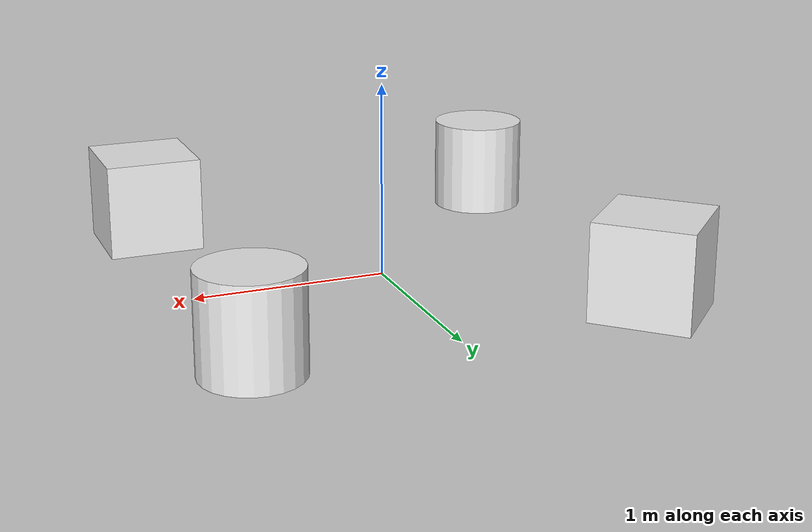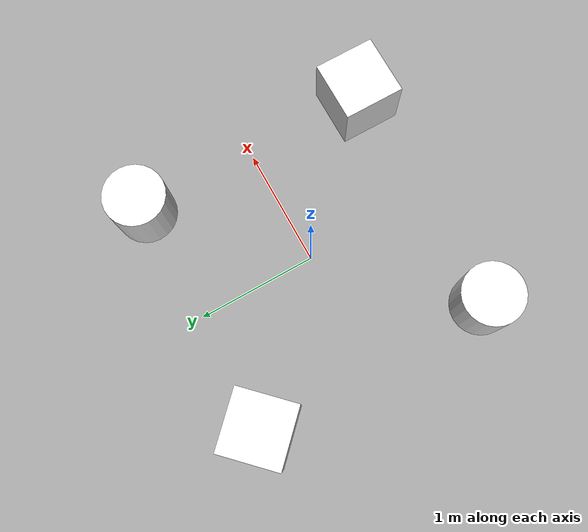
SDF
<sdf version="1.6">
 <world name="assessment_world_obstacles">
  <model name="ground_plane">
   <static>true</static>
   <link name="link">
    <collision name="collision">
     <geometry><plane><normal>0 0 1</normal><size>100 100</size></plane></geometry>
     <surface>
      <contact><collide_bitmask>0xffff</collide_bitmask></contact>
      <friction><ode><mu>100</mu><mu2>50</mu2></ode></friction>
     </surface>
    </collision>
   </link>
  </model>
  <light type="directional" name="sun">
   <cast_shadows>false</cast_shadows>
   <pose>0 0 13 0 0 0</pose>
   <diffuse>0.8 0.8 0.8 1</diffuse>
   <specular>0.2 0.2 0.2 1</specular>
   <attenuation>
    <range>1000</range>
    <constant>0.9</constant>
    <linear>0.01</linear>
    <quadratic>0.001</quadratic>
   </attenuation>
   <direction>-0.5 0.1 -0.9</direction>
  </light>
  <scene><shadows>false</shadows><grid>false</grid><origin_visual>false</origin_visual></scene>
  <physics type="ode">
   <real_time_update_rate>1000.0</real_time_update_rate>
   <max_step_size>0.001</max_step_size>
   <real_time_factor>1</real_time_factor>
   <ode>
    <solver>
     <type>quick</type>
     <iters>150</iters>
     <precon_iters>0</precon_iters>
     <sor>1.400000</sor>
     <use_dynamic_moi_rescaling>1</use_dynamic_moi_rescaling>
    </solver>
    <constraints>
     <cfm>0.00001</cfm>
     <erp>0.2</erp>
     <contact_max_correcting_vel>2000.000000</contact_max_correcting_vel>
     <contact_surface_layer>0.01000</contact_surface_layer>
    </constraints>
   </ode>
  </physics>
  <model name="box1">
   <static>true</static>
   <pose>-1 1 0.25 0 0 0.785398</pose>
   <link name="link">
    <visual name="visual">
     <geometry><box><size>0.5 0.5 0.5</size></box></geometry>
     <material>
      <script><uri>model://media/materials/scripts/assessment_materials.material</uri><name>white</name></script>
     </material>
    </visual>
    <collision name="collision"><geometry><box><size>0.5 0.5 0.5</size></box></geometry></collision>
   </link>
  </model>
  <model name="box2">
   <static>true</static>
   <pose>1 -1 0.25 0 0 0</pose>
   <link name="link">
    <visual name="visual">
     <geometry><box><size>0.5 0.5 0.5</size></box></geometry>
     <material>
      <script><uri>model://media/materials/scripts/assessment_materials.material</uri><name>white</name></script>
     </material>
    </visual>
    <collision name="collision"><geometry><box><size>0.5 0.5 0.5</size></box></geometry></collision>
   </link>
  </model>
  <model name="cylinder1">
   <static>true</static>
   <pose>1 1 0.25 0 0 0</pose>
   <link name="link">
    <visual name="visual">
     <geometry><cylinder><radius>0.25</radius><length>0.5</length></cylinder></geometry>
     <material>
      <script><uri>model://media/materials/scripts/assessment_materials.material</uri><name>white</name></script>
     </material>
    </visual>
    <collision name="collision">
     <geometry><cylinder><radius>0.25</radius><length>0.5</length></cylinder></geometry>
    </collision>
   </link>
  </model>
  <model name="cylinder2">
   <static>true</static>
   <pose>-1 -1 0.25 0 0 0</pose>
   <link name="link">
    <visual name="visual">
     <geometry><cylinder><radius>0.25</radius><length>0.5</length></cylinder></geometry>
     <material>
      <script><uri>model://media/materials/scripts/assessment_materials.material</uri><name>white</name></script>
     </material>
    </visual>
    <collision name="collision">
     <geometry><cylinder><radius>0.25</radius><length>0.5</length></cylinder></geometry>
    </collision>
   </link>
  </model>
  <plugin name="gazebo_ros_state" filename="libgazebo_ros_state.so"><update_rate>100</update_rate></plugin>
  <plugin name="gazebo_ros_item_manager" filename="libgazebo_ros_item_manager.so"/>
 </world>
</sdf>
